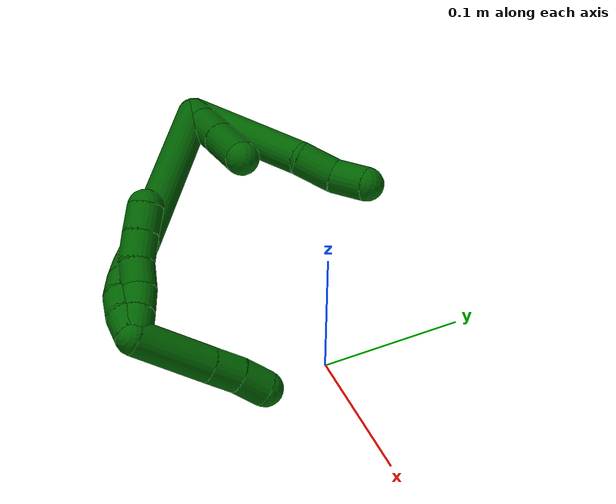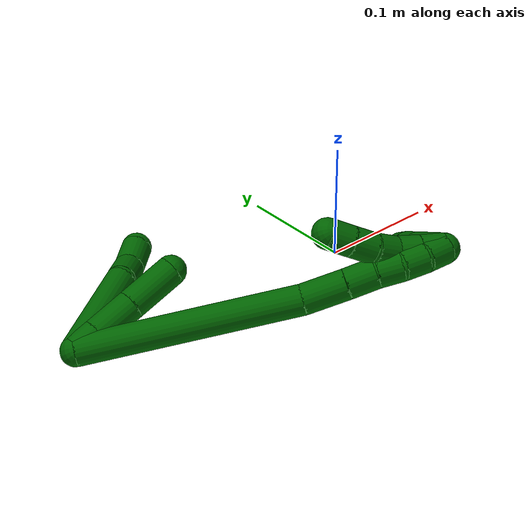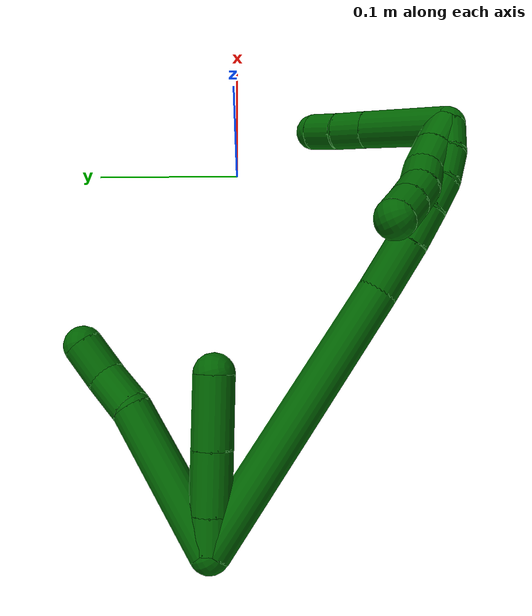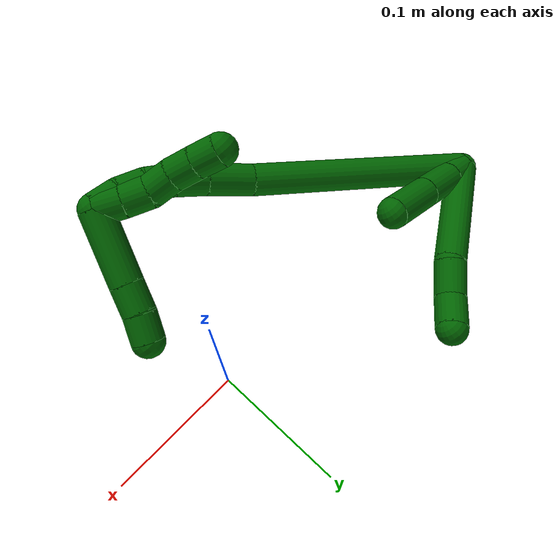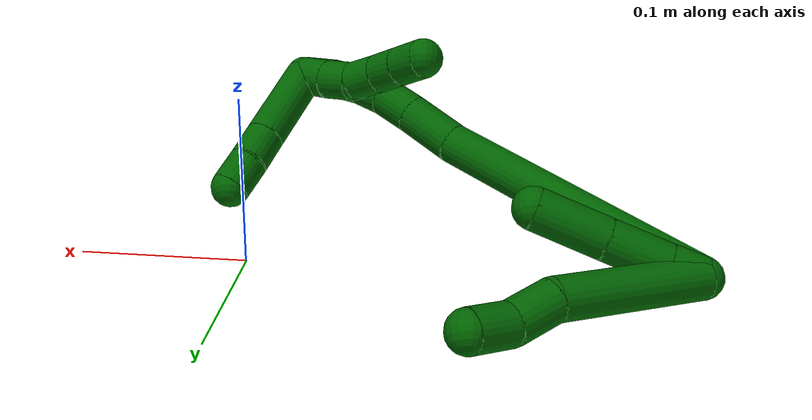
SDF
<sdf version="1.7">
 <world name="default">
  <model name="6">
   <static>0</static>
   <link name="6">
    <collision name="collision-cylinder-e_1_2_8">
     <pose>0.045284 -0.00644 -0.012843 2.67676 1.26358 2.516</pose>
     <geometry><cylinder><radius>0.0125</radius><length>0.095018</length></cylinder></geometry>
     <surface>
      <friction><ode><mu>1.16</mu><mu2>1.16</mu2><slip1>0</slip1><slip2>0</slip2></ode></friction>
      <contact><ode><kp>1e+06</kp><kd>1</kd><max_vel>0</max_vel><min_depth>0.001</min_depth></ode></contact>
     </surface>
    </collision>
    <visual name="visual-cylinder-e_1_2_8">
     <pose>0.045284 -0.00644 -0.012843 2.67676 1.26358 2.516</pose>
     <geometry><cylinder><radius>0.0125</radius><length>0.095018</length></cylinder></geometry>
     <material><ambient>0 0.392157 0.003922 1</ambient></material>
    </visual>
    <collision name="collision-cylinder-e_2_8_9">
     <pose>0.1022 -0.015871 -0.033497 2.77603 0.947339 2.4494</pose>
     <geometry><cylinder><radius>0.0125</radius><length>0.028652</length></cylinder></geometry>
     <surface>
      <friction><ode><mu>1.16</mu><mu2>1.16</mu2><slip1>0</slip1><slip2>0</slip2></ode></friction>
      <contact><ode><kp>1e+06</kp><kd>1</kd><max_vel>0</max_vel><min_depth>0.001</min_depth></ode></contact>
     </surface>
    </collision>
    <visual name="visual-cylinder-e_2_8_9">
     <pose>0.1022 -0.015871 -0.033497 2.77603 0.947339 2.4494</pose>
     <geometry><cylinder><radius>0.0125</radius><length>0.028652</length></cylinder></geometry>
     <material><ambient>0 0.392157 0.003922 1</ambient></material>
    </visual>
    <collision name="collision-cylinder-e_3_9_6">
     <pose>0.126327 -0.018949 -0.045449 3.12029 1.25081 3.1121</pose>
     <geometry><cylinder><radius>0.0125</radius><length>0.02633</length></cylinder></geometry>
     <surface>
      <friction><ode><mu>1.16</mu><mu2>1.16</mu2><slip1>0</slip1><slip2>0</slip2></ode></friction>
      <contact><ode><kp>1e+06</kp><kd>1</kd><max_vel>0</max_vel><min_depth>0.001</min_depth></ode></contact>
     </surface>
    </collision>
    <visual name="visual-cylinder-e_3_9_6">
     <pose>0.126327 -0.018949 -0.045449 3.12029 1.25081 3.1121</pose>
     <geometry><cylinder><radius>0.0125</radius><length>0.02633</length></cylinder></geometry>
     <material><ambient>0 0.392157 0.003922 1</ambient></material>
    </visual>
    <collision name="collision-cylinder-e_1_2_10">
     <pose>0.009476 -0.002948 0.003146 0.752894 1.14384 0.498319</pose>
     <geometry><cylinder><radius>0.0125</radius><length>0.02082</length></cylinder></geometry>
     <surface>
      <friction><ode><mu>1.16</mu><mu2>1.16</mu2><slip1>0</slip1><slip2>0</slip2></ode></friction>
      <contact><ode><kp>1e+06</kp><kd>1</kd><max_vel>0</max_vel><min_depth>0.001</min_depth></ode></contact>
     </surface>
    </collision>
    <visual name="visual-cylinder-e_1_2_10">
     <pose>0.009476 -0.002948 0.003146 0.752894 1.14384 0.498319</pose>
     <geometry><cylinder><radius>0.0125</radius><length>0.02082</length></cylinder></geometry>
     <material><ambient>0 0.392157 0.003922 1</ambient></material>
    </visual>
    <collision name="collision-cylinder-e_2_10_11">
     <pose>0.035302 -0.010649 0.012339 0.666254 1.13107 0.432368</pose>
     <geometry><cylinder><radius>0.0125</radius><length>0.03614</length></cylinder></geometry>
     <surface>
      <friction><ode><mu>1.16</mu><mu2>1.16</mu2><slip1>0</slip1><slip2>0</slip2></ode></friction>
      <contact><ode><kp>1e+06</kp><kd>1</kd><max_vel>0</max_vel><min_depth>0.001</min_depth></ode></contact>
     </surface>
    </collision>
    <visual name="visual-cylinder-e_2_10_11">
     <pose>0.035302 -0.010649 0.012339 0.666254 1.13107 0.432368</pose>
     <geometry><cylinder><radius>0.0125</radius><length>0.03614</length></cylinder></geometry>
     <material><ambient>0 0.392157 0.003922 1</ambient></material>
    </visual>
    <collision name="collision-cylinder-e_3_11_5">
     <pose>0.071148 -0.020965 0.025605 0.656378 1.13352 0.426797</pose>
     <geometry><cylinder><radius>0.0125</radius><length>0.04304</length></cylinder></geometry>
     <surface>
      <friction><ode><mu>1.16</mu><mu2>1.16</mu2><slip1>0</slip1><slip2>0</slip2></ode></friction>
      <contact><ode><kp>1e+06</kp><kd>1</kd><max_vel>0</max_vel><min_depth>0.001</min_depth></ode></contact>
     </surface>
    </collision>
    <visual name="visual-cylinder-e_3_11_5">
     <pose>0.071148 -0.020965 0.025605 0.656378 1.13352 0.426797</pose>
     <geometry><cylinder><radius>0.0125</radius><length>0.04304</length></cylinder></geometry>
     <material><ambient>0 0.392157 0.003922 1</ambient></material>
    </visual>
    <collision name="collision-cylinder-e_1_2_12">
     <pose>0.047436 -0.052536 0.055453 0.758388 0.555715 0.22635</pose>
     <geometry><cylinder><radius>0.0125</radius><length>0.179836</length></cylinder></geometry>
     <surface>
      <friction><ode><mu>1.16</mu><mu2>1.16</mu2><slip1>0</slip1><slip2>0</slip2></ode></friction>
      <contact><ode><kp>1e+06</kp><kd>1</kd><max_vel>0</max_vel><min_depth>0.001</min_depth></ode></contact>
     </surface>
    </collision>
    <visual name="visual-cylinder-e_1_2_12">
     <pose>0.047436 -0.052536 0.055453 0.758388 0.555715 0.22635</pose>
     <geometry><cylinder><radius>0.0125</radius><length>0.179836</length></cylinder></geometry>
     <material><ambient>0 0.392157 0.003922 1</ambient></material>
    </visual>
    <collision name="collision-cylinder-e_2_12_13">
     <pose>0.105009 -0.113523 0.123115 0.605506 0.598976 0.192301</pose>
     <geometry><cylinder><radius>0.0125</radius><length>0.035956</length></cylinder></geometry>
     <surface>
      <friction><ode><mu>1.16</mu><mu2>1.16</mu2><slip1>0</slip1><slip2>0</slip2></ode></friction>
      <contact><ode><kp>1e+06</kp><kd>1</kd><max_vel>0</max_vel><min_depth>0.001</min_depth></ode></contact>
     </surface>
    </collision>
    <visual name="visual-cylinder-e_2_12_13">
     <pose>0.105009 -0.113523 0.123115 0.605506 0.598976 0.192301</pose>
     <geometry><cylinder><radius>0.0125</radius><length>0.035956</length></cylinder></geometry>
     <material><ambient>0 0.392157 0.003922 1</ambient></material>
    </visual>
    <collision name="collision-cylinder-e_3_13_14">
     <pose>0.122357 -0.127567 0.143044 0.626876 0.647655 0.216726</pose>
     <geometry><cylinder><radius>0.0125</radius><length>0.023909</length></cylinder></geometry>
     <surface>
      <friction><ode><mu>1.16</mu><mu2>1.16</mu2><slip1>0</slip1><slip2>0</slip2></ode></friction>
      <contact><ode><kp>1e+06</kp><kd>1</kd><max_vel>0</max_vel><min_depth>0.001</min_depth></ode></contact>
     </surface>
    </collision>
    <visual name="visual-cylinder-e_3_13_14">
     <pose>0.122357 -0.127567 0.143044 0.626876 0.647655 0.216726</pose>
     <geometry><cylinder><radius>0.0125</radius><length>0.023909</length></cylinder></geometry>
     <material><ambient>0 0.392157 0.003922 1</ambient></material>
    </visual>
    <collision name="collision-cylinder-e_4_14_15">
     <pose>0.135651 -0.138958 0.15637 0.802381 0.646159 0.282164</pose>
     <geometry><cylinder><radius>0.0125</radius><length>0.020201</length></cylinder></geometry>
     <surface>
      <friction><ode><mu>1.16</mu><mu2>1.16</mu2><slip1>0</slip1><slip2>0</slip2></ode></friction>
      <contact><ode><kp>1e+06</kp><kd>1</kd><max_vel>0</max_vel><min_depth>0.001</min_depth></ode></contact>
     </surface>
    </collision>
    <visual name="visual-cylinder-e_4_14_15">
     <pose>0.135651 -0.138958 0.15637 0.802381 0.646159 0.282164</pose>
     <geometry><cylinder><radius>0.0125</radius><length>0.020201</length></cylinder></geometry>
     <material><ambient>0 0.392157 0.003922 1</ambient></material>
    </visual>
    <collision name="collision-cylinder-e_5_15_16">
     <pose>0.14911 -0.150441 0.165649 0.997032 0.82834 0.469779</pose>
     <geometry><cylinder><radius>0.0125</radius><length>0.020025</length></cylinder></geometry>
     <surface>
      <friction><ode><mu>1.16</mu><mu2>1.16</mu2><slip1>0</slip1><slip2>0</slip2></ode></friction>
      <contact><ode><kp>1e+06</kp><kd>1</kd><max_vel>0</max_vel><min_depth>0.001</min_depth></ode></contact>
     </surface>
    </collision>
    <visual name="visual-cylinder-e_5_15_16">
     <pose>0.14911 -0.150441 0.165649 0.997032 0.82834 0.469779</pose>
     <geometry><cylinder><radius>0.0125</radius><length>0.020025</length></cylinder></geometry>
     <material><ambient>0 0.392157 0.003922 1</ambient></material>
    </visual>
    <collision name="collision-cylinder-e_6_16_1">
     <pose>0.164732 -0.161599 0.171001 1.2734 0.963959 0.738177</pose>
     <geometry><cylinder><radius>0.0125</radius><length>0.020073</length></cylinder></geometry>
     <surface>
      <friction><ode><mu>1.16</mu><mu2>1.16</mu2><slip1>0</slip1><slip2>0</slip2></ode></friction>
      <contact><ode><kp>1e+06</kp><kd>1</kd><max_vel>0</max_vel><min_depth>0.001</min_depth></ode></contact>
     </surface>
    </collision>
    <visual name="visual-cylinder-e_6_16_1">
     <pose>0.164732 -0.161599 0.171001 1.2734 0.963959 0.738177</pose>
     <geometry><cylinder><radius>0.0125</radius><length>0.020073</length></cylinder></geometry>
     <material><ambient>0 0.392157 0.003922 1</ambient></material>
    </visual>
    <collision name="collision-cylinder-e_1_1_17">
     <pose>0.167612 -0.159662 0.168638 -2.06997 -0.566195 0.911158</pose>
     <geometry><cylinder><radius>0.0125</radius><length>0.02</length></cylinder></geometry>
     <surface>
      <friction><ode><mu>1.16</mu><mu2>1.16</mu2><slip1>0</slip1><slip2>0</slip2></ode></friction>
      <contact><ode><kp>1e+06</kp><kd>1</kd><max_vel>0</max_vel><min_depth>0.001</min_depth></ode></contact>
     </surface>
    </collision>
    <visual name="visual-cylinder-e_1_1_17">
     <pose>0.167612 -0.159662 0.168638 -2.06997 -0.566195 0.911158</pose>
     <geometry><cylinder><radius>0.0125</radius><length>0.02</length></cylinder></geometry>
     <material><ambient>0 0.392157 0.003922 1</ambient></material>
    </visual>
    <collision name="collision-cylinder-e_2_17_18">
     <pose>0.156816 -0.144585 0.161175 -1.99073 -0.574192 0.854294</pose>
     <geometry><cylinder><radius>0.0125</radius><length>0.02</length></cylinder></geometry>
     <surface>
      <friction><ode><mu>1.16</mu><mu2>1.16</mu2><slip1>0</slip1><slip2>0</slip2></ode></friction>
      <contact><ode><kp>1e+06</kp><kd>1</kd><max_vel>0</max_vel><min_depth>0.001</min_depth></ode></contact>
     </surface>
    </collision>
    <visual name="visual-cylinder-e_2_17_18">
     <pose>0.156816 -0.144585 0.161175 -1.99073 -0.574192 0.854294</pose>
     <geometry><cylinder><radius>0.0125</radius><length>0.02</length></cylinder></geometry>
     <material><ambient>0 0.392157 0.003922 1</ambient></material>
    </visual>
    <collision name="collision-cylinder-e_3_18_19">
     <pose>0.146411 -0.128252 0.15736 -1.6159 -0.520564 0.543448</pose>
     <geometry><cylinder><radius>0.0125</radius><length>0.02</length></cylinder></geometry>
     <surface>
      <friction><ode><mu>1.16</mu><mu2>1.16</mu2><slip1>0</slip1><slip2>0</slip2></ode></friction>
      <contact><ode><kp>1e+06</kp><kd>1</kd><max_vel>0</max_vel><min_depth>0.001</min_depth></ode></contact>
     </surface>
    </collision>
    <visual name="visual-cylinder-e_3_18_19">
     <pose>0.146411 -0.128252 0.15736 -1.6159 -0.520564 0.543448</pose>
     <geometry><cylinder><radius>0.0125</radius><length>0.02</length></cylinder></geometry>
     <material><ambient>0 0.392157 0.003922 1</ambient></material>
    </visual>
    <collision name="collision-cylinder-e_4_19_20">
     <pose>0.138241 -0.110225 0.155494 -1.72714 -0.325389 0.379471</pose>
     <geometry><cylinder><radius>0.0125</radius><length>0.02</length></cylinder></geometry>
     <surface>
      <friction><ode><mu>1.16</mu><mu2>1.16</mu2><slip1>0</slip1><slip2>0</slip2></ode></friction>
      <contact><ode><kp>1e+06</kp><kd>1</kd><max_vel>0</max_vel><min_depth>0.001</min_depth></ode></contact>
     </surface>
    </collision>
    <visual name="visual-cylinder-e_4_19_20">
     <pose>0.138241 -0.110225 0.155494 -1.72714 -0.325389 0.379471</pose>
     <geometry><cylinder><radius>0.0125</radius><length>0.02</length></cylinder></geometry>
     <material><ambient>0 0.392157 0.003922 1</ambient></material>
    </visual>
    <collision name="collision-cylinder-e_5_20_4">
     <pose>0.132109 -0.091454 0.152344 -1.74687 -0.297869 0.354438</pose>
     <geometry><cylinder><radius>0.0125</radius><length>0.02</length></cylinder></geometry>
     <surface>
      <friction><ode><mu>1.16</mu><mu2>1.16</mu2><slip1>0</slip1><slip2>0</slip2></ode></friction>
      <contact><ode><kp>1e+06</kp><kd>1</kd><max_vel>0</max_vel><min_depth>0.001</min_depth></ode></contact>
     </surface>
    </collision>
    <visual name="visual-cylinder-e_5_20_4">
     <pose>0.132109 -0.091454 0.152344 -1.74687 -0.297869 0.354438</pose>
     <geometry><cylinder><radius>0.0125</radius><length>0.02</length></cylinder></geometry>
     <material><ambient>0 0.392157 0.003922 1</ambient></material>
    </visual>
    <collision name="collision-cylinder-e_1_1_21">
     <pose>0.184899 -0.169297 0.147164 3.05458 0.435679 2.75322</pose>
     <geometry><cylinder><radius>0.0125</radius><length>0.0565</length></cylinder></geometry>
     <surface>
      <friction><ode><mu>1.16</mu><mu2>1.16</mu2><slip1>0</slip1><slip2>0</slip2></ode></friction>
      <contact><ode><kp>1e+06</kp><kd>1</kd><max_vel>0</max_vel><min_depth>0.001</min_depth></ode></contact>
     </surface>
    </collision>
    <visual name="visual-cylinder-e_1_1_21">
     <pose>0.184899 -0.169297 0.147164 3.05458 0.435679 2.75322</pose>
     <geometry><cylinder><radius>0.0125</radius><length>0.0565</length></cylinder></geometry>
     <material><ambient>0 0.392157 0.003922 1</ambient></material>
    </visual>
    <collision name="collision-cylinder-e_2_21_22">
     <pose>0.201428 -0.172286 0.11159 3.06585 0.428396 2.79671</pose>
     <geometry><cylinder><radius>0.0125</radius><length>0.022182</length></cylinder></geometry>
     <surface>
      <friction><ode><mu>1.16</mu><mu2>1.16</mu2><slip1>0</slip1><slip2>0</slip2></ode></friction>
      <contact><ode><kp>1e+06</kp><kd>1</kd><max_vel>0</max_vel><min_depth>0.001</min_depth></ode></contact>
     </surface>
    </collision>
    <visual name="visual-cylinder-e_2_21_22">
     <pose>0.201428 -0.172286 0.11159 3.06585 0.428396 2.79671</pose>
     <geometry><cylinder><radius>0.0125</radius><length>0.022182</length></cylinder></geometry>
     <material><ambient>0 0.392157 0.003922 1</ambient></material>
    </visual>
    <collision name="collision-cylinder-e_3_22_3">
     <pose>0.210639 -0.175054 0.092128 2.93153 0.446575 2.27232</pose>
     <geometry><cylinder><radius>0.0125</radius><length>0.021318</length></cylinder></geometry>
     <surface>
      <friction><ode><mu>1.16</mu><mu2>1.16</mu2><slip1>0</slip1><slip2>0</slip2></ode></friction>
      <contact><ode><kp>1e+06</kp><kd>1</kd><max_vel>0</max_vel><min_depth>0.001</min_depth></ode></contact>
     </surface>
    </collision>
    <visual name="visual-cylinder-e_3_22_3">
     <pose>0.210639 -0.175054 0.092128 2.93153 0.446575 2.27232</pose>
     <geometry><cylinder><radius>0.0125</radius><length>0.021318</length></cylinder></geometry>
     <material><ambient>0 0.392157 0.003922 1</ambient></material>
    </visual>
    <collision name="collision-sphere-3">
     <pose>0.215242 -0.177058 0.082725 0 -0 0</pose>
     <geometry><sphere><radius>0.0125</radius></sphere></geometry>
     <surface>
      <friction><ode><mu>1.16</mu><mu2>1.16</mu2><slip1>0</slip1><slip2>0</slip2></ode></friction>
      <contact><ode><kp>1e+06</kp><kd>1</kd><max_vel>0</max_vel><min_depth>0.001</min_depth></ode></contact>
     </surface>
    </collision>
    <visual name="visual-sphere-3">
     <pose>0.215242 -0.177058 0.082725 0 -0 0</pose>
     <geometry><sphere><radius>0.0125</radius></sphere></geometry>
     <material><ambient>0 0.392157 0.003922 1</ambient></material>
    </visual>
    <collision name="collision-sphere-22">
     <pose>0.206035 -0.173049 0.10153 0 -0 0</pose>
     <geometry><sphere><radius>0.0125</radius></sphere></geometry>
     <surface>
      <friction><ode><mu>1.16</mu><mu2>1.16</mu2><slip1>0</slip1><slip2>0</slip2></ode></friction>
      <contact><ode><kp>1e+06</kp><kd>1</kd><max_vel>0</max_vel><min_depth>0.001</min_depth></ode></contact>
     </surface>
    </collision>
    <visual name="visual-sphere-22">
     <pose>0.206035 -0.173049 0.10153 0 -0 0</pose>
     <geometry><sphere><radius>0.0125</radius></sphere></geometry>
     <material><ambient>0 0.392157 0.003922 1</ambient></material>
    </visual>
    <collision name="collision-sphere-21">
     <pose>0.196821 -0.171522 0.12165 0 -0 0</pose>
     <geometry><sphere><radius>0.0125</radius></sphere></geometry>
     <surface>
      <friction><ode><mu>1.16</mu><mu2>1.16</mu2><slip1>0</slip1><slip2>0</slip2></ode></friction>
      <contact><ode><kp>1e+06</kp><kd>1</kd><max_vel>0</max_vel><min_depth>0.001</min_depth></ode></contact>
     </surface>
    </collision>
    <visual name="visual-sphere-21">
     <pose>0.196821 -0.171522 0.12165 0 -0 0</pose>
     <geometry><sphere><radius>0.0125</radius></sphere></geometry>
     <material><ambient>0 0.392157 0.003922 1</ambient></material>
    </visual>
    <collision name="collision-sphere-4">
     <pose>0.129174 -0.082042 0.150669 0 -0 0</pose>
     <geometry><sphere><radius>0.0125</radius></sphere></geometry>
     <surface>
      <friction><ode><mu>1.16</mu><mu2>1.16</mu2><slip1>0</slip1><slip2>0</slip2></ode></friction>
      <contact><ode><kp>1e+06</kp><kd>1</kd><max_vel>0</max_vel><min_depth>0.001</min_depth></ode></contact>
     </surface>
    </collision>
    <visual name="visual-sphere-4">
     <pose>0.129174 -0.082042 0.150669 0 -0 0</pose>
     <geometry><sphere><radius>0.0125</radius></sphere></geometry>
     <material><ambient>0 0.392157 0.003922 1</ambient></material>
    </visual>
    <collision name="collision-sphere-20">
     <pose>0.135044 -0.100866 0.154019 0 -0 0</pose>
     <geometry><sphere><radius>0.0125</radius></sphere></geometry>
     <surface>
      <friction><ode><mu>1.16</mu><mu2>1.16</mu2><slip1>0</slip1><slip2>0</slip2></ode></friction>
      <contact><ode><kp>1e+06</kp><kd>1</kd><max_vel>0</max_vel><min_depth>0.001</min_depth></ode></contact>
     </surface>
    </collision>
    <visual name="visual-sphere-20">
     <pose>0.135044 -0.100866 0.154019 0 -0 0</pose>
     <geometry><sphere><radius>0.0125</radius></sphere></geometry>
     <material><ambient>0 0.392157 0.003922 1</ambient></material>
    </visual>
    <collision name="collision-sphere-11">
     <pose>0.051653 -0.015403 0.018386 0 -0 0</pose>
     <geometry><sphere><radius>0.0125</radius></sphere></geometry>
     <surface>
      <friction><ode><mu>1.16</mu><mu2>1.16</mu2><slip1>0</slip1><slip2>0</slip2></ode></friction>
      <contact><ode><kp>1e+06</kp><kd>1</kd><max_vel>0</max_vel><min_depth>0.001</min_depth></ode></contact>
     </surface>
    </collision>
    <visual name="visual-sphere-11">
     <pose>0.051653 -0.015403 0.018386 0 -0 0</pose>
     <geometry><sphere><radius>0.0125</radius></sphere></geometry>
     <material><ambient>0 0.392157 0.003922 1</ambient></material>
    </visual>
    <collision name="collision-sphere-10">
     <pose>0.018951 -0.005895 0.006291 0 -0 0</pose>
     <geometry><sphere><radius>0.0125</radius></sphere></geometry>
     <surface>
      <friction><ode><mu>1.16</mu><mu2>1.16</mu2><slip1>0</slip1><slip2>0</slip2></ode></friction>
      <contact><ode><kp>1e+06</kp><kd>1</kd><max_vel>0</max_vel><min_depth>0.001</min_depth></ode></contact>
     </surface>
    </collision>
    <visual name="visual-sphere-10">
     <pose>0.018951 -0.005895 0.006291 0 -0 0</pose>
     <geometry><sphere><radius>0.0125</radius></sphere></geometry>
     <material><ambient>0 0.392157 0.003922 1</ambient></material>
    </visual>
    <collision name="collision-sphere-6">
     <pose>0.138824 -0.019037 -0.049589 0 -0 0</pose>
     <geometry><sphere><radius>0.0125</radius></sphere></geometry>
     <surface>
      <friction><ode><mu>1.16</mu><mu2>1.16</mu2><slip1>0</slip1><slip2>0</slip2></ode></friction>
      <contact><ode><kp>1e+06</kp><kd>1</kd><max_vel>0</max_vel><min_depth>0.001</min_depth></ode></contact>
     </surface>
    </collision>
    <visual name="visual-sphere-6">
     <pose>0.138824 -0.019037 -0.049589 0 -0 0</pose>
     <geometry><sphere><radius>0.0125</radius></sphere></geometry>
     <material><ambient>0 0.392157 0.003922 1</ambient></material>
    </visual>
    <collision name="collision-sphere-9">
     <pose>0.113831 -0.018861 -0.041309 0 -0 0</pose>
     <geometry><sphere><radius>0.0125</radius></sphere></geometry>
     <surface>
      <friction><ode><mu>1.16</mu><mu2>1.16</mu2><slip1>0</slip1><slip2>0</slip2></ode></friction>
      <contact><ode><kp>1e+06</kp><kd>1</kd><max_vel>0</max_vel><min_depth>0.001</min_depth></ode></contact>
     </surface>
    </collision>
    <visual name="visual-sphere-9">
     <pose>0.113831 -0.018861 -0.041309 0 -0 0</pose>
     <geometry><sphere><radius>0.0125</radius></sphere></geometry>
     <material><ambient>0 0.392157 0.003922 1</ambient></material>
    </visual>
    <collision name="collision-sphere-2">
     <geometry><sphere><radius>0.0125</radius></sphere></geometry>
     <surface>
      <friction><ode><mu>1.16</mu><mu2>1.16</mu2><slip1>0</slip1><slip2>0</slip2></ode></friction>
      <contact><ode><kp>1e+06</kp><kd>1</kd><max_vel>0</max_vel><min_depth>0.001</min_depth></ode></contact>
     </surface>
    </collision>
    <visual name="visual-sphere-2">
     <geometry><sphere><radius>0.0125</radius></sphere></geometry>
     <material><ambient>0 0.392157 0.003922 1</ambient></material>
    </visual>
    <collision name="collision-sphere-19">
     <pose>0.141437 -0.119585 0.156969 0 -0 0</pose>
     <geometry><sphere><radius>0.0125</radius></sphere></geometry>
     <surface>
      <friction><ode><mu>1.16</mu><mu2>1.16</mu2><slip1>0</slip1><slip2>0</slip2></ode></friction>
      <contact><ode><kp>1e+06</kp><kd>1</kd><max_vel>0</max_vel><min_depth>0.001</min_depth></ode></contact>
     </surface>
    </collision>
    <visual name="visual-sphere-19">
     <pose>0.141437 -0.119585 0.156969 0 -0 0</pose>
     <geometry><sphere><radius>0.0125</radius></sphere></geometry>
     <material><ambient>0 0.392157 0.003922 1</ambient></material>
    </visual>
    <collision name="collision-sphere-8">
     <pose>0.090569 -0.012881 -0.025685 0 -0 0</pose>
     <geometry><sphere><radius>0.0125</radius></sphere></geometry>
     <surface>
      <friction><ode><mu>1.16</mu><mu2>1.16</mu2><slip1>0</slip1><slip2>0</slip2></ode></friction>
      <contact><ode><kp>1e+06</kp><kd>1</kd><max_vel>0</max_vel><min_depth>0.001</min_depth></ode></contact>
     </surface>
    </collision>
    <visual name="visual-sphere-8">
     <pose>0.090569 -0.012881 -0.025685 0 -0 0</pose>
     <geometry><sphere><radius>0.0125</radius></sphere></geometry>
     <material><ambient>0 0.392157 0.003922 1</ambient></material>
    </visual>
    <collision name="collision-sphere-5">
     <pose>0.090643 -0.026526 0.032825 0 -0 0</pose>
     <geometry><sphere><radius>0.0125</radius></sphere></geometry>
     <surface>
      <friction><ode><mu>1.16</mu><mu2>1.16</mu2><slip1>0</slip1><slip2>0</slip2></ode></friction>
      <contact><ode><kp>1e+06</kp><kd>1</kd><max_vel>0</max_vel><min_depth>0.001</min_depth></ode></contact>
     </surface>
    </collision>
    <visual name="visual-sphere-5">
     <pose>0.090643 -0.026526 0.032825 0 -0 0</pose>
     <geometry><sphere><radius>0.0125</radius></sphere></geometry>
     <material><ambient>0 0.392157 0.003922 1</ambient></material>
    </visual>
    <collision name="collision-sphere-12">
     <pose>0.094873 -0.105071 0.110906 0 -0 0</pose>
     <geometry><sphere><radius>0.0125</radius></sphere></geometry>
     <surface>
      <friction><ode><mu>1.16</mu><mu2>1.16</mu2><slip1>0</slip1><slip2>0</slip2></ode></friction>
      <contact><ode><kp>1e+06</kp><kd>1</kd><max_vel>0</max_vel><min_depth>0.001</min_depth></ode></contact>
     </surface>
    </collision>
    <visual name="visual-sphere-12">
     <pose>0.094873 -0.105071 0.110906 0 -0 0</pose>
     <geometry><sphere><radius>0.0125</radius></sphere></geometry>
     <material><ambient>0 0.392157 0.003922 1</ambient></material>
    </visual>
    <collision name="collision-sphere-13">
     <pose>0.115145 -0.121974 0.135323 0 -0 0</pose>
     <geometry><sphere><radius>0.0125</radius></sphere></geometry>
     <surface>
      <friction><ode><mu>1.16</mu><mu2>1.16</mu2><slip1>0</slip1><slip2>0</slip2></ode></friction>
      <contact><ode><kp>1e+06</kp><kd>1</kd><max_vel>0</max_vel><min_depth>0.001</min_depth></ode></contact>
     </surface>
    </collision>
    <visual name="visual-sphere-13">
     <pose>0.115145 -0.121974 0.135323 0 -0 0</pose>
     <geometry><sphere><radius>0.0125</radius></sphere></geometry>
     <material><ambient>0 0.392157 0.003922 1</ambient></material>
    </visual>
    <collision name="collision-sphere-14">
     <pose>0.129569 -0.133159 0.150765 0 -0 0</pose>
     <geometry><sphere><radius>0.0125</radius></sphere></geometry>
     <surface>
      <friction><ode><mu>1.16</mu><mu2>1.16</mu2><slip1>0</slip1><slip2>0</slip2></ode></friction>
      <contact><ode><kp>1e+06</kp><kd>1</kd><max_vel>0</max_vel><min_depth>0.001</min_depth></ode></contact>
     </surface>
    </collision>
    <visual name="visual-sphere-14">
     <pose>0.129569 -0.133159 0.150765 0 -0 0</pose>
     <geometry><sphere><radius>0.0125</radius></sphere></geometry>
     <material><ambient>0 0.392157 0.003922 1</ambient></material>
    </visual>
    <collision name="collision-sphere-15">
     <pose>0.141733 -0.144756 0.161975 0 -0 0</pose>
     <geometry><sphere><radius>0.0125</radius></sphere></geometry>
     <surface>
      <friction><ode><mu>1.16</mu><mu2>1.16</mu2><slip1>0</slip1><slip2>0</slip2></ode></friction>
      <contact><ode><kp>1e+06</kp><kd>1</kd><max_vel>0</max_vel><min_depth>0.001</min_depth></ode></contact>
     </surface>
    </collision>
    <visual name="visual-sphere-15">
     <pose>0.141733 -0.144756 0.161975 0 -0 0</pose>
     <geometry><sphere><radius>0.0125</radius></sphere></geometry>
     <material><ambient>0 0.392157 0.003922 1</ambient></material>
    </visual>
    <collision name="collision-sphere-16">
     <pose>0.156487 -0.156127 0.169323 0 -0 0</pose>
     <geometry><sphere><radius>0.0125</radius></sphere></geometry>
     <surface>
      <friction><ode><mu>1.16</mu><mu2>1.16</mu2><slip1>0</slip1><slip2>0</slip2></ode></friction>
      <contact><ode><kp>1e+06</kp><kd>1</kd><max_vel>0</max_vel><min_depth>0.001</min_depth></ode></contact>
     </surface>
    </collision>
    <visual name="visual-sphere-16">
     <pose>0.156487 -0.156127 0.169323 0 -0 0</pose>
     <geometry><sphere><radius>0.0125</radius></sphere></geometry>
     <material><ambient>0 0.392157 0.003922 1</ambient></material>
    </visual>
    <collision name="collision-sphere-1">
     <pose>0.172976 -0.167071 0.172678 0 -0 0</pose>
     <geometry><sphere><radius>0.0125</radius></sphere></geometry>
     <surface>
      <friction><ode><mu>1.16</mu><mu2>1.16</mu2><slip1>0</slip1><slip2>0</slip2></ode></friction>
      <contact><ode><kp>1e+06</kp><kd>1</kd><max_vel>0</max_vel><min_depth>0.001</min_depth></ode></contact>
     </surface>
    </collision>
    <visual name="visual-sphere-1">
     <pose>0.172976 -0.167071 0.172678 0 -0 0</pose>
     <geometry><sphere><radius>0.0125</radius></sphere></geometry>
     <material><ambient>0 0.392157 0.003922 1</ambient></material>
    </visual>
    <collision name="collision-sphere-18">
     <pose>0.151385 -0.136918 0.157752 0 -0 0</pose>
     <geometry><sphere><radius>0.0125</radius></sphere></geometry>
     <surface>
      <friction><ode><mu>1.16</mu><mu2>1.16</mu2><slip1>0</slip1><slip2>0</slip2></ode></friction>
      <contact><ode><kp>1e+06</kp><kd>1</kd><max_vel>0</max_vel><min_depth>0.001</min_depth></ode></contact>
     </surface>
    </collision>
    <visual name="visual-sphere-18">
     <pose>0.151385 -0.136918 0.157752 0 -0 0</pose>
     <geometry><sphere><radius>0.0125</radius></sphere></geometry>
     <material><ambient>0 0.392157 0.003922 1</ambient></material>
    </visual>
    <collision name="collision-sphere-17">
     <pose>0.162248 -0.152252 0.164598 0 -0 0</pose>
     <geometry><sphere><radius>0.0125</radius></sphere></geometry>
     <surface>
      <friction><ode><mu>1.16</mu><mu2>1.16</mu2><slip1>0</slip1><slip2>0</slip2></ode></friction>
      <contact><ode><kp>1e+06</kp><kd>1</kd><max_vel>0</max_vel><min_depth>0.001</min_depth></ode></contact>
     </surface>
    </collision>
    <visual name="visual-sphere-17">
     <pose>0.162248 -0.152252 0.164598 0 -0 0</pose>
     <geometry><sphere><radius>0.0125</radius></sphere></geometry>
     <material><ambient>0 0.392157 0.003922 1</ambient></material>
    </visual>
    <inertial>
     <pose>0.098115 -0.077813 0.072825 0 -0 0</pose>
     <mass>0.75</mass>
     <inertia>
      <ixx>0.000545</ixx>
      <ixy>0</ixy>
      <ixz>0</ixz>
      <iyy>0.000624</iyy>
      <iyz>0</iyz>
      <izz>-5.6e-05</izz>
     </inertia>
    </inertial>
   </link>
   <pose>-0.259831 0.015285 0.012248 0.793375 -0.356724 0.436197</pose>
  </model>
 </world>
</sdf>
